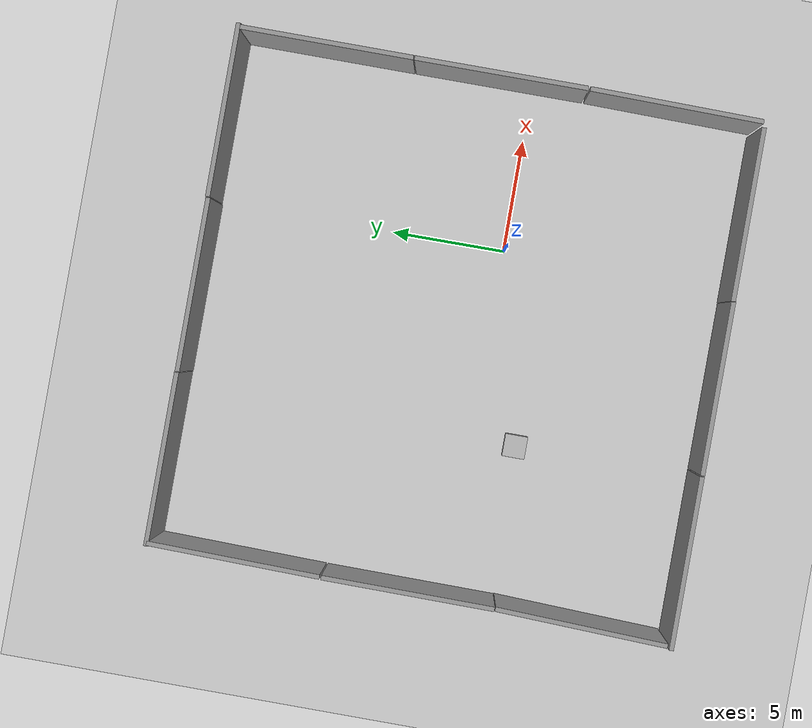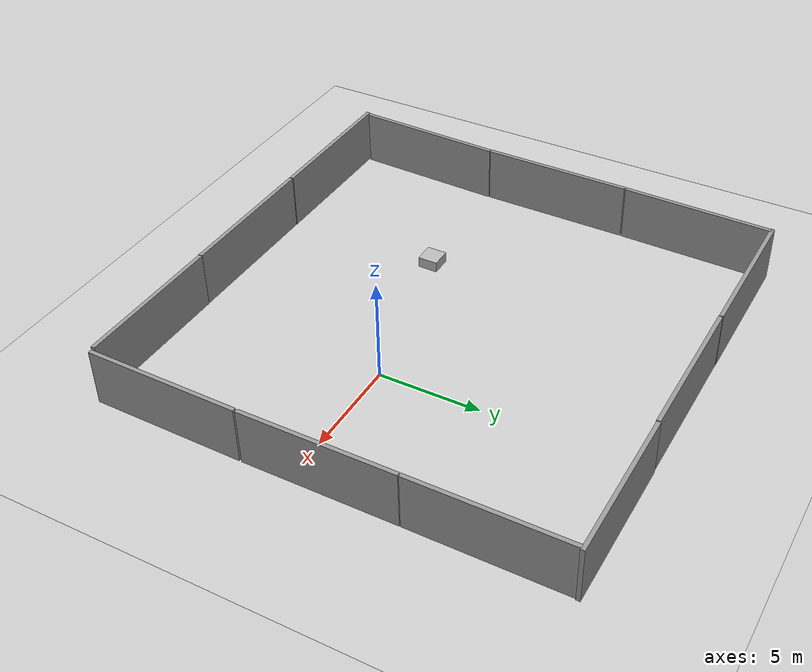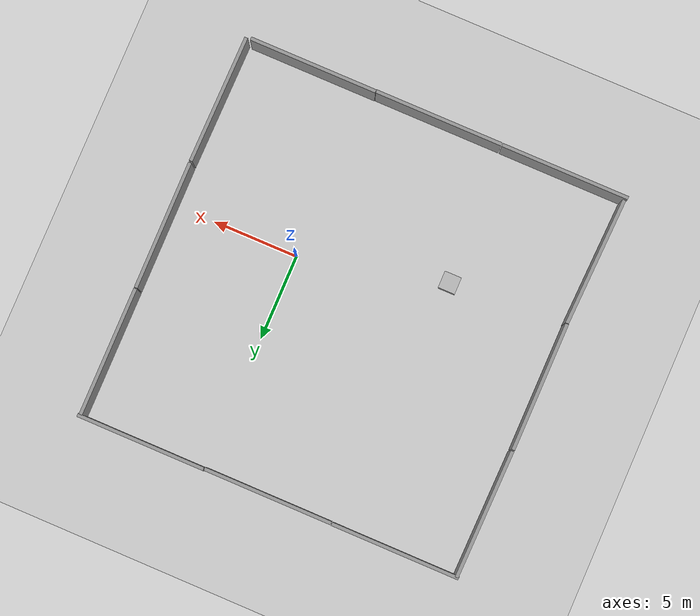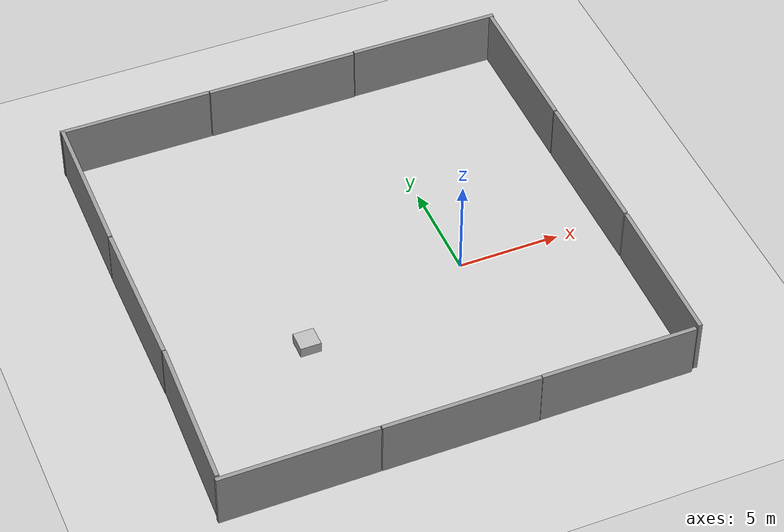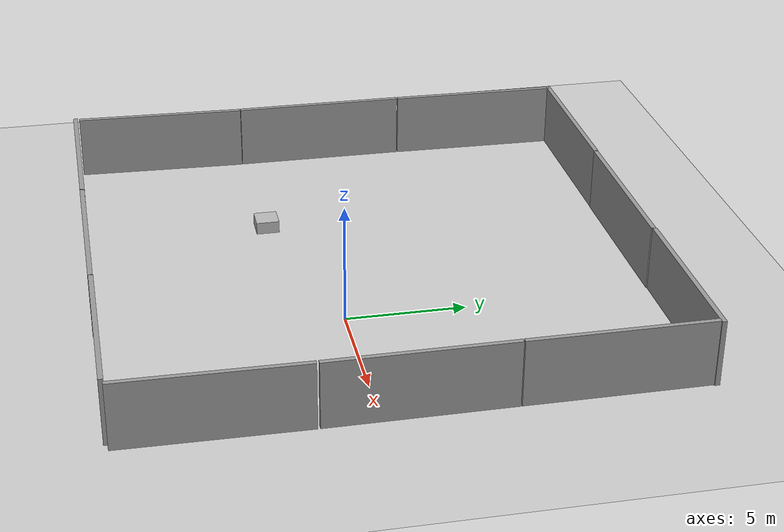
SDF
<sdf version="1.6">
 <world name="default">
  <light name="sun" type="directional">
   <pose>0 0 10 0 -0 0</pose>
   <diffuse>0.8 0.8 0.8 1</diffuse>
   <specular>0.2 0.2 0.2 1</specular>
   <attenuation>
    <range>1000</range>
    <constant>0.9</constant>
    <linear>0.01</linear>
    <quadratic>0.001</quadratic>
   </attenuation>
   <direction>-0.5 0.1 -0.9</direction>
  </light>
  <model name="ground_plane">
   <static>1</static>
   <link name="link">
    <collision name="collision">
     <geometry><plane><normal>0 0 1</normal><size>100 100</size></plane></geometry>
     <surface><friction><ode><mu>100</mu><mu2>50</mu2></ode></friction></surface>
    </collision>
    <visual name="visual">
     <cast_shadows>0</cast_shadows>
     <geometry><plane><normal>0 0 1</normal><size>100 100</size></plane></geometry>
     <material>
      <script><uri>file://media/materials/scripts/gazebo.material</uri><name>Gazebo/Grey</name></script>
     </material>
    </visual>
   </link>
  </model>
  <gravity>0 0 -9.8</gravity>
  <magnetic_field>6e-06 2.3e-05 -4.2e-05</magnetic_field>
  <atmosphere type="adiabatic"/>
  <physics name="default_physics" default="0" type="ode">
   <max_step_size>0.001</max_step_size>
   <real_time_factor>1</real_time_factor>
   <real_time_update_rate>1000</real_time_update_rate>
  </physics>
  <scene><ambient>0.4 0.4 0.4 1</ambient><background>0.7 0.7 0.7 1</background><shadows>1</shadows></scene>
  <spherical_coordinates>
   <surface_model>EARTH_WGS84</surface_model>
   <latitude_deg>0</latitude_deg>
   <longitude_deg>0</longitude_deg>
   <elevation>0</elevation>
   <heading_deg>0</heading_deg>
  </spherical_coordinates>
  <model name="grey_wall">
   <static>1</static>
   <link name="link">
    <pose>0 0 1.4 0 -0 0</pose>
    <collision name="collision"><geometry><box><size>7.5 0.2 2.8</size></box></geometry></collision>
    <visual name="visual">
     <cast_shadows>0</cast_shadows>
     <geometry><box><size>7.5 0.2 2.8</size></box></geometry>
     <material>
      <script>
       <uri>model://grey_wall/materials/scripts</uri>
       <uri>model://grey_wall/materials/textures</uri>
       <name>vrc/grey_wall</name>
      </script>
     </material>
    </visual>
   </link>
   <pose>3.18494 -9.90624 0 0 -0 0</pose>
  </model>
  <model name="grey_wall_0">
   <static>1</static>
   <link name="link">
    <pose>0 0 1.4 0 -0 0</pose>
    <collision name="collision"><geometry><box><size>7.5 0.2 2.8</size></box></geometry></collision>
    <visual name="visual">
     <cast_shadows>0</cast_shadows>
     <geometry><box><size>7.5 0.2 2.8</size></box></geometry>
     <material>
      <script>
       <uri>model://grey_wall/materials/scripts</uri>
       <uri>model://grey_wall/materials/textures</uri>
       <name>vrc/grey_wall</name>
      </script>
      <ambient>1 1 1 1</ambient>
      <diffuse>1 1 1 1</diffuse>
      <specular>0.1 0.1 0.1 1</specular>
      <emissive>0 0 0 0</emissive>
     </material>
    </visual>
   </link>
   <pose>-4.33717 -9.92294 0 0 -0 0</pose>
  </model>
  <model name="grey_wall_1">
   <static>1</static>
   <link name="link">
    <pose>0 0 1.4 0 -0 0</pose>
    <collision name="collision"><geometry><box><size>7.5 0.2 2.8</size></box></geometry></collision>
    <visual name="visual">
     <cast_shadows>0</cast_shadows>
     <geometry><box><size>7.5 0.2 2.8</size></box></geometry>
     <material>
      <script>
       <uri>model://grey_wall/materials/scripts</uri>
       <uri>model://grey_wall/materials/textures</uri>
       <name>vrc/grey_wall</name>
      </script>
     </material>
    </visual>
   </link>
   <pose>-11.8874 -9.91724 0 0 -0 0</pose>
  </model>
  <model name="grey_wall_2">
   <static>1</static>
   <link name="link">
    <pose>0 0 1.4 0 -0 0</pose>
    <collision name="collision"><geometry><box><size>7.5 0.2 2.8</size></box></geometry></collision>
    <visual name="visual">
     <cast_shadows>0</cast_shadows>
     <geometry><box><size>7.5 0.2 2.8</size></box></geometry>
     <material>
      <script>
       <uri>model://grey_wall/materials/scripts</uri>
       <uri>model://grey_wall/materials/textures</uri>
       <name>vrc/grey_wall</name>
      </script>
     </material>
    </visual>
   </link>
   <pose>7.22444 -6.10014 0 0 0 -1.5823</pose>
  </model>
  <model name="grey_wall_3">
   <static>1</static>
   <link name="link">
    <pose>0 0 1.4 0 -0 0</pose>
    <collision name="collision"><geometry><box><size>7.5 0.2 2.8</size></box></geometry></collision>
    <visual name="visual">
     <cast_shadows>0</cast_shadows>
     <geometry><box><size>7.5 0.2 2.8</size></box></geometry>
     <material>
      <script>
       <uri>model://grey_wall/materials/scripts</uri>
       <uri>model://grey_wall/materials/textures</uri>
       <name>vrc/grey_wall</name>
      </script>
     </material>
    </visual>
   </link>
   <pose>7.25936 1.49333 0 0 0 -1.56838</pose>
  </model>
  <model name="grey_wall_4">
   <static>1</static>
   <link name="link">
    <pose>0 0 1.4 0 -0 0</pose>
    <collision name="collision"><geometry><box><size>7.5 0.2 2.8</size></box></geometry></collision>
    <visual name="visual">
     <cast_shadows>0</cast_shadows>
     <geometry><box><size>7.5 0.2 2.8</size></box></geometry>
     <material>
      <script>
       <uri>model://grey_wall/materials/scripts</uri>
       <uri>model://grey_wall/materials/textures</uri>
       <name>vrc/grey_wall</name>
      </script>
     </material>
    </visual>
   </link>
   <pose>7.24772 9.04031 0 0 -0 1.57124</pose>
  </model>
  <model name="grey_wall_6">
   <static>1</static>
   <link name="link">
    <pose>0 0 1.4 0 -0 0</pose>
    <collision name="collision"><geometry><box><size>7.5 0.2 2.8</size></box></geometry></collision>
    <visual name="visual">
     <cast_shadows>0</cast_shadows>
     <geometry><box><size>7.5 0.2 2.8</size></box></geometry>
     <material>
      <script>
       <uri>model://grey_wall/materials/scripts</uri>
       <uri>model://grey_wall/materials/textures</uri>
       <name>vrc/grey_wall</name>
      </script>
     </material>
    </visual>
   </link>
   <pose>-15.2132 1.53289 0 0 0 -1.5758</pose>
  </model>
  <model name="grey_wall_7">
   <static>1</static>
   <link name="link">
    <pose>0 0 1.4 0 -0 0</pose>
    <collision name="collision"><geometry><box><size>7.5 0.2 2.8</size></box></geometry></collision>
    <visual name="visual">
     <cast_shadows>0</cast_shadows>
     <geometry><box><size>7.5 0.2 2.8</size></box></geometry>
     <material>
      <script>
       <uri>model://grey_wall/materials/scripts</uri>
       <uri>model://grey_wall/materials/textures</uri>
       <name>vrc/grey_wall</name>
      </script>
     </material>
    </visual>
   </link>
   <pose>-15.1224 9.10114 0 0 0 -1.58806</pose>
  </model>
  <model name="grey_wall_8">
   <static>1</static>
   <link name="link">
    <pose>0 0 1.4 0 -0 0</pose>
    <collision name="collision"><geometry><box><size>7.5 0.2 2.8</size></box></geometry></collision>
    <visual name="visual">
     <cast_shadows>0</cast_shadows>
     <geometry><box><size>7.5 0.2 2.8</size></box></geometry>
     <material>
      <script>
       <uri>model://grey_wall/materials/scripts</uri>
       <uri>model://grey_wall/materials/textures</uri>
       <name>vrc/grey_wall</name>
      </script>
     </material>
    </visual>
   </link>
   <pose>-11.4361 12.8537 0 0 -0 0</pose>
  </model>
  <model name="grey_wall_9">
   <static>1</static>
   <link name="link">
    <pose>0 0 1.4 0 -0 0</pose>
    <collision name="collision"><geometry><box><size>7.5 0.2 2.8</size></box></geometry></collision>
    <visual name="visual">
     <cast_shadows>0</cast_shadows>
     <geometry><box><size>7.5 0.2 2.8</size></box></geometry>
     <material>
      <script>
       <uri>model://grey_wall/materials/scripts</uri>
       <uri>model://grey_wall/materials/textures</uri>
       <name>vrc/grey_wall</name>
      </script>
     </material>
    </visual>
   </link>
   <pose>-3.89342 12.8397 -0.00331 0 -0 0</pose>
  </model>
  <model name="grey_wall_10">
   <static>1</static>
   <link name="link">
    <pose>0 0 1.4 0 -0 0</pose>
    <collision name="collision"><geometry><box><size>7.5 0.2 2.8</size></box></geometry></collision>
    <visual name="visual">
     <cast_shadows>0</cast_shadows>
     <geometry><box><size>7.5 0.2 2.8</size></box></geometry>
     <material>
      <script>
       <uri>model://grey_wall/materials/scripts</uri>
       <uri>model://grey_wall/materials/textures</uri>
       <name>vrc/grey_wall</name>
      </script>
     </material>
    </visual>
   </link>
   <pose>3.64906 12.8722 0 0 -0 0</pose>
  </model>
  <model name="grey_wall_5">
   <static>1</static>
   <link name="link">
    <pose>0 0 1.4 0 -0 0</pose>
    <collision name="collision"><geometry><box><size>7.5 0.2 2.8</size></box></geometry></collision>
    <visual name="visual">
     <cast_shadows>0</cast_shadows>
     <geometry><box><size>7.5 0.2 2.8</size></box></geometry>
     <material>
      <script>
       <uri>model://grey_wall/materials/scripts</uri>
       <uri>model://grey_wall/materials/textures</uri>
       <name>vrc/grey_wall</name>
      </script>
     </material>
    </visual>
   </link>
   <pose>-15.3488 -5.99146 0 0 -0 1.535</pose>
  </model>
  <model name="cube_20k">
   <link name="link">
    <kinematic>true</kinematic>
    <collision name="collision">
     <geometry><box><size>1 1 1</size></box></geometry>
     <surface><friction><ode><mu>0.0</mu><mu2>0.0</mu2></ode></friction></surface>
    </collision>
    <visual name="visual"><geometry><box><size>1 1 1</size></box></geometry></visual>
   </link>
   <plugin name="random" filename="libRandomVelocityPlugin.so">
    <link>link</link>
    <initial_velocity>0 0.5 0</initial_velocity>
    <velocity_factor>1</velocity_factor>
    <update_period>5</update_period>
    <min_x>0</min_x>
    <max_x>0</max_x>
    <min_z>0</min_z>
    <max_z>0</max_z>
   </plugin>
   <pose>-8.44801 -2 0 0 -0 0</pose>
  </model>
 </world>
</sdf>
